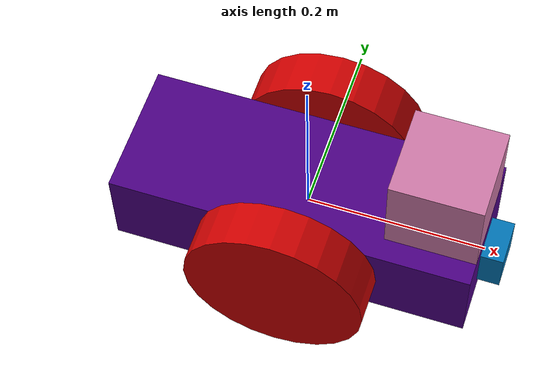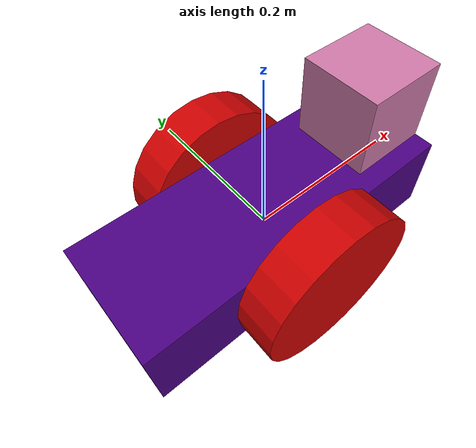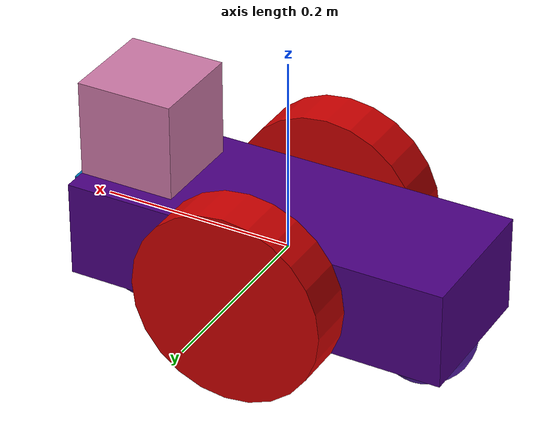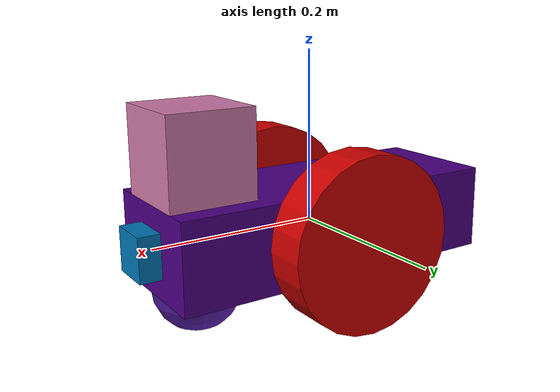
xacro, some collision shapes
<?xml version='1.0'?>

<robot name="my_robot" xmlns:xacro="http://www.ros.org/wiki/xacro">

  <xacro:include filename="$(find my_robot)/urdf/my_robot.gazebo" />

  <material name="indigo">
    <color rgba="0.29 0 0.51 1"/>
  </material>

  <material name="red">
    <color rgba="0.8 0 0 1"/>
  </material>

  <link name="robot_footprint"></link>

  <joint name="robot_footprint_joint" type="fixed">
    <origin xyz="0 0 0" rpy="0 0 0" />
    <parent link="robot_footprint"/>
    <child link="chassis" />
  </joint>

  <link name='chassis'>
    <pose>0 0 0.1 0 0 0</pose>

    <inertial>
      <mass value="15.0"/>
      <origin xyz="0.0 0 0" rpy=" 0 0 0"/>
      <inertia
          ixx="0.1" ixy="0" ixz="0"
          iyy="0.1" iyz="0"
          izz="0.1"
      />
    </inertial>

    <collision name='collision'>
      <origin xyz="0 0 0" rpy=" 0 0 0"/>
      <geometry>
        <box size=".4 .15 .1"/>
      </geometry>
    </collision>

    <visual name='chassis_visual'>
      <origin xyz="0 0 0" rpy=" 0 0 0"/>
      <geometry>
        <box size=".4 .15 .1"/>
      </geometry>
      <material name="indigo"/>
    </visual>

    <collision name='back_caster_collision'>
      <origin xyz="-0.15 0 -0.05" rpy=" 0 0 0"/>
      <geometry>
        <sphere radius="0.0499"/>
      </geometry>
    </collision>

    <visual name='back_caster_visual'>
      <origin xyz="-0.15 0 -0.05" rpy=" 0 0 0"/>
      <geometry>
        <sphere radius="0.05"/>
      </geometry>
    </visual>

    <collision name='front_caster_collision'>
      <origin xyz="0.15 0 -0.05" rpy=" 0 0 0"/>
      <geometry>
        <sphere radius="0.0499"/>
      </geometry>
    </collision>

    <visual name='front_caster_visual'>
      <origin xyz="0.15 0 -0.05" rpy=" 0 0 0"/>
      <geometry>
        <sphere radius="0.05"/>
      </geometry>
    </visual>

  </link>

  <link name="right_wheel">
    <inertial>
      <mass value="5"/>
      <origin xyz="0 0 0" rpy=" 0 1.5707 1.5707"/>
      <inertia
          ixx="0.1" ixy="0" ixz="0"
          iyy="0.1" iyz="0" izz="0.1"
      />
    </inertial>

    <collision name='right_wheel_collision'>
      <origin xyz="0 0 0" rpy=" 0 1.5707 1.5707"/>
      <geometry>
        <cylinder radius="0.1" length="0.05"/>
      </geometry>
    </collision>

    <visual name='right_wheel_visual'>
      <origin xyz="0 0 0" rpy=" 0 1.5707 1.5707"/>
      <geometry>
        <cylinder radius="0.1" length="0.05"/>
      </geometry>
      <material name="red"/>
    </visual>
  </link>

  <joint type="continuous" name="right_wheel_hinge">
    <origin xyz="0 -0.1 0" rpy="0 0 0"/>
    <child link="right_wheel"/>
    <parent link="chassis"/>
    <axis xyz="0 1 0" rpy="0 0 0"/>
    <limit effort="10000" velocity="1000"/>
    <dynamics damping="1.0" friction="1.0"/>
  </joint>

  <link name="left_wheel">
    <inertial>
      <mass value="5"/>
      <origin xyz="0 0 0" rpy=" 0 1.5707 1.5707"/>
      <inertia
          ixx="0.1" ixy="0" ixz="0"
          iyy="0.1" iyz="0" izz="0.1"
      />
    </inertial>

    <collision name='left_wheel_collision'>
      <origin xyz="0 0 0" rpy=" 0 1.5707 1.5707"/>
      <geometry>
        <cylinder radius="0.1" length="0.05"/>
      </geometry>
    </collision>

    <visual name='left_wheel_visual'>
      <origin xyz="0 0 0" rpy=" 0 1.5707 1.5707"/>
      <geometry>
        <cylinder radius="0.1" length="0.05"/>
      </geometry>
      <material name="red"/>
    </visual>
  </link>

  <joint type="continuous" name="left_wheel_hinge">
    <origin xyz="0 0.1 0" rpy="0 0 0"/>
    <child link="left_wheel"/>
    <parent link="chassis"/>
    <axis xyz="0 1 0" rpy="0 0 0"/>
    <limit effort="10000" velocity="1000"/>
    <dynamics damping="1.0" friction="1.0"/>
  </joint>

  <link name="camera">
    <inertial>
      <mass value="0.1"/>
      <origin xyz="0 0 0" rpy=" 0 0 0"/>
      <inertia
          ixx="1e-6" ixy="0" ixz="0"
          iyy="1e-6" iyz="0" izz="1e-6"
      />
    </inertial>

    <collision name='camera_collision'>
      <origin xyz="0 0 0" rpy=" 0 0 0"/>
      <geometry>
        <box size="0.05 0.05 0.05"/>
      </geometry>
    </collision>

    <visual name='camera_visual'>
      <origin xyz="0 0 0" rpy=" 0 0 0"/>
      <geometry>
        <box size="0.05 0.05 0.05"/>
      </geometry>
    </visual>
  </link>

  <joint name="camera_joint" type="fixed">
    <axis xyz="0 1 0"/>
    <origin xyz="0.2 0 0" rpy="0 0 0"/>
    <parent link="chassis"/>
    <child link="camera" />
  </joint>

  <joint name="camera_optical_joint" type="fixed">
    <origin xyz="0 0 0" rpy="-1.5707 0 -1.5707"/>
    <parent link="camera"/>
    <child link="camera_link_optical"/>
  </joint>

  <link name="camera_link_optical">
  </link>

  <link name="hokuyo">
    <inertial>
      <mass value="1e-5"/>
      <origin xyz="0 0 0" rpy=" 0 0 0"/>
      <inertia
          ixx="1e-6" ixy="0" ixz="0"
          iyy="1e-6" iyz="0" izz="1e-6"
      />
    </inertial>

    <collision name='hokuyo_collision'>
      <origin xyz="0 0 0" rpy=" 0 0 0"/>
      <geometry>
        <box size="0.1 0.1 0.1"/>
      </geometry>
    </collision>

    <visual name='hokuyo_visual'>
      <geometry>
        <mesh filename="package://my_robot/meshes/hokuyo.dae"/>
      </geometry>
    </visual>
  </link>

  <joint name="hokuyo_joint" type="fixed">
    <axis xyz="0 1 0"/>
    <origin xyz="0.15 0 0.1" rpy="0 0 0"/>
    <parent link="chassis"/>
    <child link="hokuyo" />
  </joint>

</robot>
